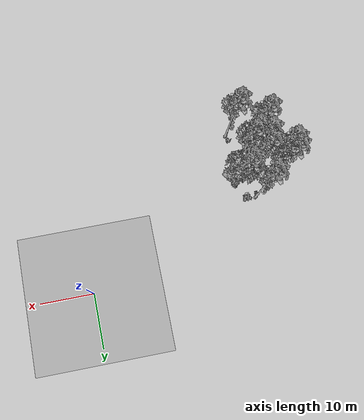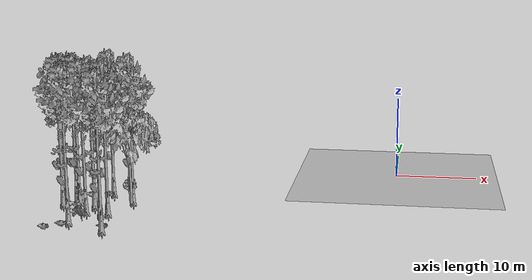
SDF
<sdf version="1.7">
 <world name="default">
  <model name="ground_plane">
   <static>1</static>
   <link name="link">
    <collision name="collision">
     <pose>-50 0 0 0 -0 0</pose>
     <geometry><plane><normal>0 0 1</normal><size>80 80</size></plane></geometry>
     <surface><contact><ode><min_depth>0.01</min_depth><max_vel>0</max_vel></ode></contact></surface>
    </collision>
    <visual name="grass">
     <cast_shadows>0</cast_shadows>
     <geometry>
      <mesh>
       <scale>0.46714285714285714 0.46714285714285714 0.1</scale>
       <uri>file://grass_plane/meshes/grass_plane.dae</uri>
      </mesh>
     </geometry>
    </visual>
   </link>
  </model>
  <model name="Tree 0">
   <static>1</static>
   <pose>-30.194991499181604 -16.02617432502095 0 1.57079 -0 0</pose>
   <link name="link">
    <collision name="collision">
     <geometry><mesh><scale>3.5 5 3.5</scale><uri>model://tree_2/meshes/tree_2.obj</uri></mesh></geometry>
    </collision>
    <visual name="visual">
     <geometry><mesh><scale>3.5 5 3.5</scale><uri>model://tree_2/meshes/tree_2.obj</uri></mesh></geometry>
    </visual>
   </link>
  </model>
  <model name="Tree 84">
   <static>1</static>
   <pose>-34.89042758604113 -23.43560407261809 0 1.57079 -0 0</pose>
   <link name="link">
    <collision name="collision">
     <geometry><mesh><scale>3.5 5 3.5</scale><uri>model://tree_9/meshes/tree_9.obj</uri></mesh></geometry>
    </collision>
    <visual name="visual">
     <geometry><mesh><scale>3.5 5 3.5</scale><uri>model://tree_9/meshes/tree_9.obj</uri></mesh></geometry>
    </visual>
   </link>
  </model>
  <model name="Tree 171">
   <static>1</static>
   <pose>-33.92378459672135 -17.625508862890726 0 1.57079 -0 0</pose>
   <link name="link">
    <collision name="collision">
     <geometry><mesh><scale>3.5 5 3.5</scale><uri>model://tree_9/meshes/tree_9.obj</uri></mesh></geometry>
    </collision>
    <visual name="visual">
     <geometry><mesh><scale>3.5 5 3.5</scale><uri>model://tree_9/meshes/tree_9.obj</uri></mesh></geometry>
    </visual>
   </link>
  </model>
  <model name="Tree 203">
   <static>1</static>
   <pose>-37.80257471627868 -16.055881954256186 0 1.57079 -0 0</pose>
   <link name="link">
    <collision name="collision">
     <geometry><mesh><scale>3.5 5 3.5</scale><uri>model://tree_9/meshes/tree_9.obj</uri></mesh></geometry>
    </collision>
    <visual name="visual">
     <geometry><mesh><scale>3.5 5 3.5</scale><uri>model://tree_9/meshes/tree_9.obj</uri></mesh></geometry>
    </visual>
   </link>
  </model>
  <model name="Tree 250">
   <static>1</static>
   <pose>-34.223649545989694 -19.644220841180015 0 1.57079 -0 0</pose>
   <link name="link">
    <collision name="collision">
     <geometry><mesh><scale>3.5 5 3.5</scale><uri>model://tree_9/meshes/tree_9.obj</uri></mesh></geometry>
    </collision>
    <visual name="visual">
     <geometry><mesh><scale>3.5 5 3.5</scale><uri>model://tree_9/meshes/tree_9.obj</uri></mesh></geometry>
    </visual>
   </link>
  </model>
  <model name="Tree 257">
   <static>1</static>
   <pose>-36.243676543870926 -16.123219285975658 0 1.57079 -0 0</pose>
   <link name="link">
    <collision name="collision">
     <geometry><mesh><scale>3.5 5 3.5</scale><uri>model://tree_9/meshes/tree_9.obj</uri></mesh></geometry>
    </collision>
    <visual name="visual">
     <geometry><mesh><scale>3.5 5 3.5</scale><uri>model://tree_9/meshes/tree_9.obj</uri></mesh></geometry>
    </visual>
   </link>
  </model>
  <model name="Tree 305">
   <static>1</static>
   <pose>-33.33407762690749 -12.399902631143071 0 1.57079 -0 0</pose>
   <link name="link">
    <collision name="collision">
     <geometry><mesh><scale>3.5 5 3.5</scale><uri>model://tree_9/meshes/tree_9.obj</uri></mesh></geometry>
    </collision>
    <visual name="visual">
     <geometry><mesh><scale>3.5 5 3.5</scale><uri>model://tree_9/meshes/tree_9.obj</uri></mesh></geometry>
    </visual>
   </link>
  </model>
  <model name="Tree 333">
   <static>1</static>
   <pose>-32.27992246537485 -20.480241975376508 0 1.57079 -0 0</pose>
   <link name="link">
    <collision name="collision">
     <geometry><mesh><scale>3.5 5 3.5</scale><uri>model://tree_9/meshes/tree_9.obj</uri></mesh></geometry>
    </collision>
    <visual name="visual">
     <geometry><mesh><scale>3.5 5 3.5</scale><uri>model://tree_9/meshes/tree_9.obj</uri></mesh></geometry>
    </visual>
   </link>
  </model>
  <model name="Tree 365">
   <static>1</static>
   <pose>-30.08916257351055 -15.28803941207255 0 1.57079 -0 0</pose>
   <link name="link">
    <collision name="collision">
     <geometry><mesh><scale>3.5 5 3.5</scale><uri>model://tree_9/meshes/tree_9.obj</uri></mesh></geometry>
    </collision>
    <visual name="visual">
     <geometry><mesh><scale>3.5 5 3.5</scale><uri>model://tree_9/meshes/tree_9.obj</uri></mesh></geometry>
    </visual>
   </link>
  </model>
  <model name="Tree 399">
   <static>1</static>
   <pose>-36.61141145095977 -15.990995840265665 0 1.57079 -0 0</pose>
   <link name="link">
    <collision name="collision">
     <geometry><mesh><scale>3.5 5 3.5</scale><uri>model://tree_9/meshes/tree_9.obj</uri></mesh></geometry>
    </collision>
    <visual name="visual">
     <geometry><mesh><scale>3.5 5 3.5</scale><uri>model://tree_9/meshes/tree_9.obj</uri></mesh></geometry>
    </visual>
   </link>
  </model>
  <model name="Tree 440">
   <static>1</static>
   <pose>-37.80681372117349 -17.31363958951657 0 1.57079 -0 0</pose>
   <link name="link">
    <collision name="collision">
     <geometry><mesh><scale>3.5 5 3.5</scale><uri>model://tree_9/meshes/tree_9.obj</uri></mesh></geometry>
    </collision>
    <visual name="visual">
     <geometry><mesh><scale>3.5 5 3.5</scale><uri>model://tree_9/meshes/tree_9.obj</uri></mesh></geometry>
    </visual>
   </link>
  </model>
  <model name="Tree 559">
   <static>1</static>
   <pose>-31.60736178206356 -19.866497860625945 0 1.57079 -0 0</pose>
   <link name="link">
    <collision name="collision">
     <geometry><mesh><scale>3.5 5 3.5</scale><uri>model://tree_9/meshes/tree_9.obj</uri></mesh></geometry>
    </collision>
    <visual name="visual">
     <geometry><mesh><scale>3.5 5 3.5</scale><uri>model://tree_9/meshes/tree_9.obj</uri></mesh></geometry>
    </visual>
   </link>
  </model>
  <model name="Tree 584">
   <static>1</static>
   <pose>-30.39362214911709 -25.667992149324654 0 1.57079 -0 0</pose>
   <link name="link">
    <collision name="collision">
     <geometry><mesh><scale>3.5 5 3.5</scale><uri>model://tree_9/meshes/tree_9.obj</uri></mesh></geometry>
    </collision>
    <visual name="visual">
     <geometry><mesh><scale>3.5 5 3.5</scale><uri>model://tree_9/meshes/tree_9.obj</uri></mesh></geometry>
    </visual>
   </link>
  </model>
  <model name="Bush 121">
   <static>1</static>
   <pose>-33.672530819270655 -13.00772626925913 0 1.57079 -0 0</pose>
   <link name="link">
    <collision name="collision">
     <geometry><mesh><scale>2 2 2</scale><uri>model://bush_2/meshes/bush_2.obj</uri></mesh></geometry>
     <surface><contact><collide_without_contact>false</collide_without_contact></contact></surface>
    </collision>
    <visual name="visual">
     <geometry><mesh><scale>2 2 2</scale><uri>model://bush_2/meshes/bush_2.obj</uri></mesh></geometry>
    </visual>
   </link>
  </model>
  <model name="Bush 209">
   <static>1</static>
   <pose>-33.46106491102658 -23.088706101402543 0 1.57079 -0 0</pose>
   <link name="link">
    <collision name="collision">
     <geometry><mesh><scale>2 2 2</scale><uri>model://bush_5/meshes/bush_5.obj</uri></mesh></geometry>
     <surface><contact><collide_without_contact>false</collide_without_contact></contact></surface>
    </collision>
    <visual name="visual">
     <geometry><mesh><scale>2 2 2</scale><uri>model://bush_5/meshes/bush_5.obj</uri></mesh></geometry>
    </visual>
   </link>
  </model>
  <model name="Bush 266">
   <static>1</static>
   <pose>-30.674987401280518 -24.568406616990252 0 1.57079 -0 0</pose>
   <link name="link">
    <collision name="collision">
     <geometry><mesh><scale>2 2 2</scale><uri>model://bush_2/meshes/bush_2.obj</uri></mesh></geometry>
     <surface><contact><collide_without_contact>false</collide_without_contact></contact></surface>
    </collision>
    <visual name="visual">
     <geometry><mesh><scale>2 2 2</scale><uri>model://bush_2/meshes/bush_2.obj</uri></mesh></geometry>
    </visual>
   </link>
  </model>
  <model name="Bush 267">
   <static>1</static>
   <pose>-33.81940773263598 -22.300025872981397 0 1.57079 -0 0</pose>
   <link name="link">
    <collision name="collision">
     <geometry><mesh><scale>2 2 2</scale><uri>model://bush_0/meshes/bush_0.obj</uri></mesh></geometry>
     <surface><contact><collide_without_contact>false</collide_without_contact></contact></surface>
    </collision>
    <visual name="visual">
     <geometry><mesh><scale>2 2 2</scale><uri>model://bush_0/meshes/bush_0.obj</uri></mesh></geometry>
    </visual>
   </link>
  </model>
  <model name="Bush 327">
   <static>1</static>
   <pose>-34.913345958446044 -21.80706460016892 0 1.57079 -0 0</pose>
   <link name="link">
    <collision name="collision">
     <geometry><mesh><scale>2 2 2</scale><uri>model://bush_1/meshes/bush_1.obj</uri></mesh></geometry>
     <surface><contact><collide_without_contact>false</collide_without_contact></contact></surface>
    </collision>
    <visual name="visual">
     <geometry><mesh><scale>2 2 2</scale><uri>model://bush_1/meshes/bush_1.obj</uri></mesh></geometry>
    </visual>
   </link>
  </model>
  <model name="Bush 338">
   <static>1</static>
   <pose>-36.899568627189645 -25.60962666031333 0 1.57079 -0 0</pose>
   <link name="link">
    <collision name="collision">
     <geometry><mesh><scale>2 2 2</scale><uri>model://bush_2/meshes/bush_2.obj</uri></mesh></geometry>
     <surface><contact><collide_without_contact>false</collide_without_contact></contact></surface>
    </collision>
    <visual name="visual">
     <geometry><mesh><scale>2 2 2</scale><uri>model://bush_2/meshes/bush_2.obj</uri></mesh></geometry>
    </visual>
   </link>
  </model>
  <model name="Bush 448">
   <static>1</static>
   <pose>-35.4119083490773 -24.41037940483156 0 1.57079 -0 0</pose>
   <link name="link">
    <collision name="collision">
     <geometry><mesh><scale>2 2 2</scale><uri>model://bush_2/meshes/bush_2.obj</uri></mesh></geometry>
     <surface><contact><collide_without_contact>false</collide_without_contact></contact></surface>
    </collision>
    <visual name="visual">
     <geometry><mesh><scale>2 2 2</scale><uri>model://bush_2/meshes/bush_2.obj</uri></mesh></geometry>
    </visual>
   </link>
  </model>
  <model name="Bush 451">
   <static>1</static>
   <pose>-35.813116176928226 -13.559219427528689 0 1.57079 -0 0</pose>
   <link name="link">
    <collision name="collision">
     <geometry><mesh><scale>2 2 2</scale><uri>model://bush_2/meshes/bush_2.obj</uri></mesh></geometry>
     <surface><contact><collide_without_contact>false</collide_without_contact></contact></surface>
    </collision>
    <visual name="visual">
     <geometry><mesh><scale>2 2 2</scale><uri>model://bush_2/meshes/bush_2.obj</uri></mesh></geometry>
    </visual>
   </link>
  </model>
  <model name="Bush 487">
   <static>1</static>
   <pose>-31.399437684649293 -12.510640208148285 0 1.57079 -0 0</pose>
   <link name="link">
    <collision name="collision">
     <geometry><mesh><scale>2 2 2</scale><uri>model://bush_1/meshes/bush_1.obj</uri></mesh></geometry>
     <surface><contact><collide_without_contact>false</collide_without_contact></contact></surface>
    </collision>
    <visual name="visual">
     <geometry><mesh><scale>2 2 2</scale><uri>model://bush_1/meshes/bush_1.obj</uri></mesh></geometry>
    </visual>
   </link>
  </model>
  <model name="Bush 632">
   <static>1</static>
   <pose>-36.009378572334086 -15.98423910462703 0 1.57079 -0 0</pose>
   <link name="link">
    <collision name="collision">
     <geometry><mesh><scale>2 2 2</scale><uri>model://bush_5/meshes/bush_5.obj</uri></mesh></geometry>
     <surface><contact><collide_without_contact>false</collide_without_contact></contact></surface>
    </collision>
    <visual name="visual">
     <geometry><mesh><scale>2 2 2</scale><uri>model://bush_5/meshes/bush_5.obj</uri></mesh></geometry>
    </visual>
   </link>
  </model>
 </world>
</sdf>
